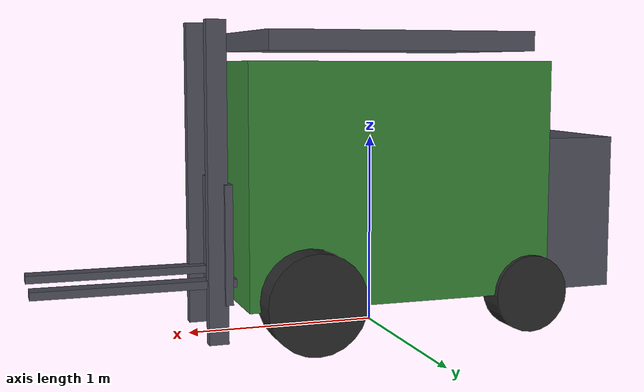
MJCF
<mujoco>
  <!-- Forklift model (primitive approximation - mesh pending conversion from STEP) -->
  <asset>
    <material name="forklift_body" rgba="0.2 0.5 0.2 1"/>
    <material name="forklift_metal" rgba="0.3 0.3 0.35 1"/>
    <material name="forklift_wheel" rgba="0.15 0.15 0.15 1"/>
  </asset>

  <worldbody>
    <body name="forklift_root">
      <!-- Main body/cab -->
      <geom name="body" type="box" size="0.8 0.5 0.6" pos="0 0 0.8" material="forklift_body"/>
      <geom name="roof" type="box" size="0.7 0.5 0.05" pos="0 0 1.5" material="forklift_metal"/>

      <!-- Mast (vertical frame for forks) -->
      <geom name="mast_left" type="box" size="0.05 0.03 0.8" pos="0.9 0.25 0.8" material="forklift_metal"/>
      <geom name="mast_right" type="box" size="0.05 0.03 0.8" pos="0.9 -0.25 0.8" material="forklift_metal"/>

      <!-- Forks -->
      <geom name="fork_left" type="box" size="0.5 0.05 0.02" pos="1.3 0.2 0.3" material="forklift_metal"/>
      <geom name="fork_right" type="box" size="0.5 0.05 0.02" pos="1.3 -0.2 0.3" material="forklift_metal"/>
      <geom name="fork_back" type="box" size="0.02 0.3 0.3" pos="0.85 0 0.5" material="forklift_metal"/>

      <!-- Counterweight -->
      <geom name="counterweight" type="box" size="0.3 0.45 0.4" pos="-0.9 0 0.6" material="forklift_metal"/>

      <!-- Wheels -->
      <geom name="wheel_fl" type="cylinder" size="0.25 0.1" pos="0.5 0.55 0.25" euler="90 0 0" material="forklift_wheel"/>
      <geom name="wheel_fr" type="cylinder" size="0.25 0.1" pos="0.5 -0.55 0.25" euler="90 0 0" material="forklift_wheel"/>
      <geom name="wheel_rl" type="cylinder" size="0.2 0.08" pos="-0.7 0.45 0.2" euler="90 0 0" material="forklift_wheel"/>
      <geom name="wheel_rr" type="cylinder" size="0.2 0.08" pos="-0.7 -0.45 0.2" euler="90 0 0" material="forklift_wheel"/>
    </body>
  </worldbody>
</mujoco>
